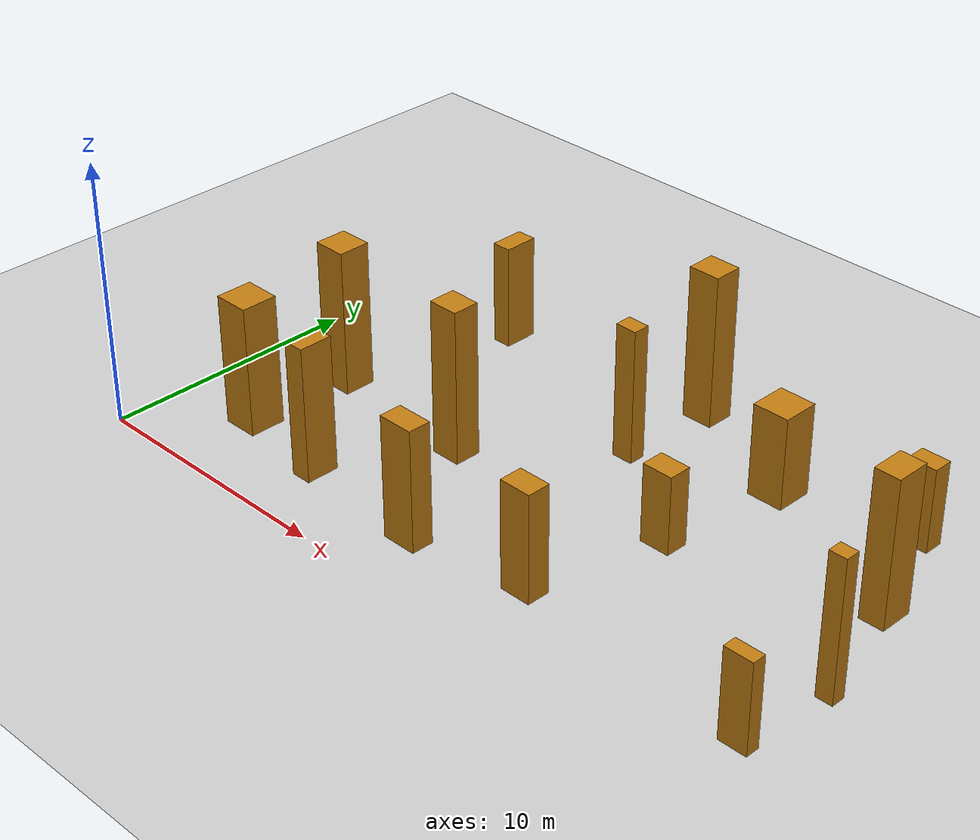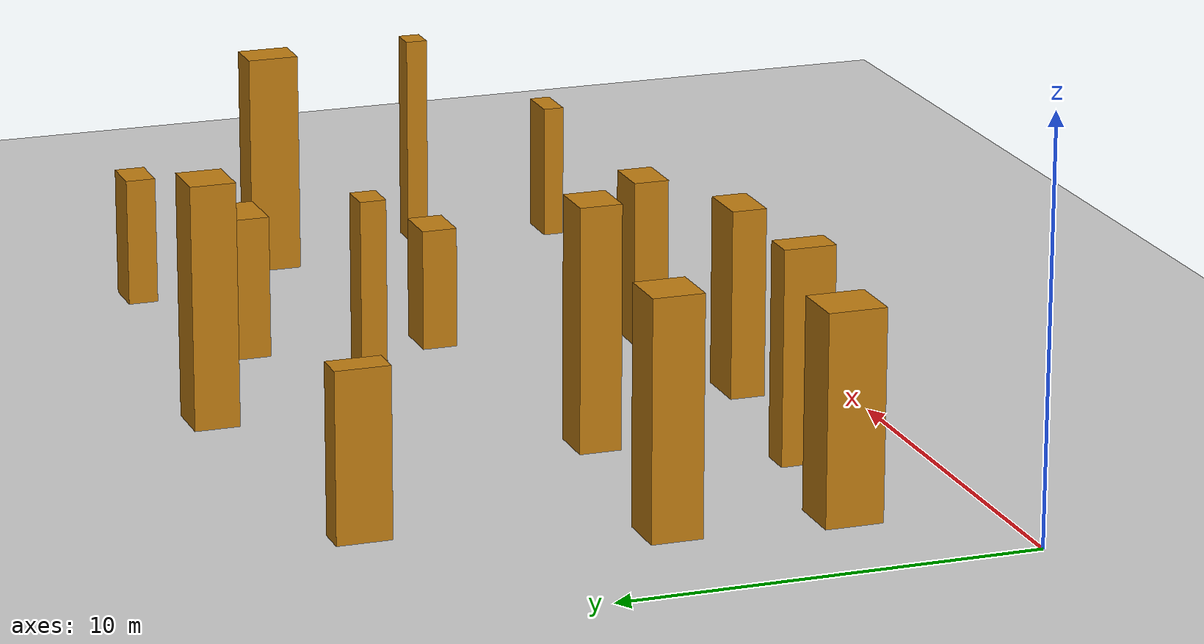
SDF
<sdf version="1.7">
 <world name="default">
  <model name="ground_plane">
   <static>1</static>
   <link name="link">
    <collision name="collision">
     <geometry><plane><normal>0 0 1</normal><size>100 100</size></plane></geometry>
     <surface>
      <contact><collide_bitmask>65535</collide_bitmask></contact>
      <friction><ode><mu>100</mu><mu2>50</mu2></ode></friction>
     </surface>
    </collision>
    <visual name="visual">
     <cast_shadows>0</cast_shadows>
     <geometry><plane><normal>0 0 1</normal><size>100 100</size></plane></geometry>
     <material>
      <script><uri>file://media/materials/scripts/gazebo.material</uri><name>Gazebo/Grey</name></script>
     </material>
    </visual>
   </link>
  </model>
  <model name="model0">
   <link name="link">
    <inertial>
     <mass>1</mass>
     <inertia>
      <ixx>0.166667</ixx>
      <ixy>0</ixy>
      <ixz>0</ixz>
      <iyy>0.166667</iyy>
      <iyz>0</iyz>
      <izz>0.166667</izz>
     </inertia>
    </inertial>
    <visual name="visual">
     <geometry><box><size>0.6597966464865729 0.5433565334158762 5.326100559477567</size></box></geometry>
     <material>
      <script><name>Gazebo/Grey</name><uri>file://media/materials/scripts/gazebo.material</uri></script>
      <shader type="pixel"><normal_map>__default__</normal_map></shader>
      <ambient>0.757 0.49 0.067 1</ambient>
      <diffuse>0.7 0.7 0.7 1</diffuse>
      <specular>0.01 0.01 0.01 1</specular>
      <emissive>0 0 0 1</emissive>
     </material>
    </visual>
    <collision name="collision">
     <geometry><box><size>0.6597966464865729 0.5433565334158762 5.326100559477567</size></box></geometry>
     <surface>
      <friction>
       <ode><mu>1</mu><mu2>1</mu2><fdir1>0 0 0</fdir1><slip1>0</slip1><slip2>0</slip2></ode>
       <torsional>
        <coefficient>1</coefficient>
        <patch_radius>0</patch_radius>
        <surface_radius>0</surface_radius>
        <use_patch_radius>1</use_patch_radius>
        <ode><slip>0</slip></ode>
       </torsional>
      </friction>
      <bounce><restitution_coefficient>0</restitution_coefficient><threshold>1e+06</threshold></bounce>
      <contact>
       <collide_without_contact>0</collide_without_contact>
       <collide_without_contact_bitmask>1</collide_without_contact_bitmask>
       <collide_bitmask>1</collide_bitmask>
       <ode>
        <soft_cfm>0</soft_cfm>
        <soft_erp>0.2</soft_erp>
        <kp>1e+13</kp>
        <kd>1</kd>
        <max_vel>0.01</max_vel>
        <min_depth>0</min_depth>
       </ode>
       <bullet>
        <split_impulse>1</split_impulse>
        <split_impulse_penetration_threshold>-0.01</split_impulse_penetration_threshold>
        <soft_cfm>0</soft_cfm>
        <soft_erp>0.2</soft_erp>
        <kp>1e+13</kp>
        <kd>1</kd>
       </bullet>
      </contact>
     </surface>
    </collision>
   </link>
   <static>0</static>
   <pose>26.97412062747795 5.797697109522776 2.6630502797387834 0.0 0.0 0.0</pose>
  </model>
  <model name="model4">
   <link name="link">
    <inertial>
     <mass>1</mass>
     <inertia>
      <ixx>0.166667</ixx>
      <ixy>0</ixy>
      <ixz>0</ixz>
      <iyy>0.166667</iyy>
      <iyz>0</iyz>
      <izz>0.166667</izz>
     </inertia>
    </inertial>
    <visual name="visual">
     <geometry><box><size>0.8350673018529385 0.6346498263390593 5.191413497331203</size></box></geometry>
     <material>
      <script><name>Gazebo/Grey</name><uri>file://media/materials/scripts/gazebo.material</uri></script>
      <shader type="pixel"><normal_map>__default__</normal_map></shader>
      <ambient>0.757 0.49 0.067 1</ambient>
      <diffuse>0.7 0.7 0.7 1</diffuse>
      <specular>0.01 0.01 0.01 1</specular>
      <emissive>0 0 0 1</emissive>
     </material>
    </visual>
    <collision name="collision">
     <geometry><box><size>0.8350673018529385 0.6346498263390593 5.191413497331203</size></box></geometry>
     <surface>
      <friction>
       <ode><mu>1</mu><mu2>1</mu2><fdir1>0 0 0</fdir1><slip1>0</slip1><slip2>0</slip2></ode>
       <torsional>
        <coefficient>1</coefficient>
        <patch_radius>0</patch_radius>
        <surface_radius>0</surface_radius>
        <use_patch_radius>1</use_patch_radius>
        <ode><slip>0</slip></ode>
       </torsional>
      </friction>
      <bounce><restitution_coefficient>0</restitution_coefficient><threshold>1e+06</threshold></bounce>
      <contact>
       <collide_without_contact>0</collide_without_contact>
       <collide_without_contact_bitmask>1</collide_without_contact_bitmask>
       <collide_bitmask>1</collide_bitmask>
       <ode>
        <soft_cfm>0</soft_cfm>
        <soft_erp>0.2</soft_erp>
        <kp>1e+13</kp>
        <kd>1</kd>
        <max_vel>0.01</max_vel>
        <min_depth>0</min_depth>
       </ode>
       <bullet>
        <split_impulse>1</split_impulse>
        <split_impulse_penetration_threshold>-0.01</split_impulse_penetration_threshold>
        <soft_cfm>0</soft_cfm>
        <soft_erp>0.2</soft_erp>
        <kp>1e+13</kp>
        <kd>1</kd>
       </bullet>
      </contact>
     </surface>
    </collision>
   </link>
   <static>0</static>
   <pose>14.127437549624553 11.041690797355706 2.5957067486656014 0.0 0.0 0.0</pose>
  </model>
  <model name="model5">
   <link name="link">
    <inertial>
     <mass>1</mass>
     <inertia>
      <ixx>0.166667</ixx>
      <ixy>0</ixy>
      <ixz>0</ixz>
      <iyy>0.166667</iyy>
      <iyz>0</iyz>
      <izz>0.166667</izz>
     </inertia>
    </inertial>
    <visual name="visual">
     <geometry><box><size>1.420351690742608 1.4059996348466806 3.5472753856791237</size></box></geometry>
     <material>
      <script><name>Gazebo/Grey</name><uri>file://media/materials/scripts/gazebo.material</uri></script>
      <shader type="pixel"><normal_map>__default__</normal_map></shader>
      <ambient>0.757 0.49 0.067 1</ambient>
      <diffuse>0.7 0.7 0.7 1</diffuse>
      <specular>0.01 0.01 0.01 1</specular>
      <emissive>0 0 0 1</emissive>
     </material>
    </visual>
    <collision name="collision">
     <geometry><box><size>1.420351690742608 1.4059996348466806 3.5472753856791237</size></box></geometry>
     <surface>
      <friction>
       <ode><mu>1</mu><mu2>1</mu2><fdir1>0 0 0</fdir1><slip1>0</slip1><slip2>0</slip2></ode>
       <torsional>
        <coefficient>1</coefficient>
        <patch_radius>0</patch_radius>
        <surface_radius>0</surface_radius>
        <use_patch_radius>1</use_patch_radius>
        <ode><slip>0</slip></ode>
       </torsional>
      </friction>
      <bounce><restitution_coefficient>0</restitution_coefficient><threshold>1e+06</threshold></bounce>
      <contact>
       <collide_without_contact>0</collide_without_contact>
       <collide_without_contact_bitmask>1</collide_without_contact_bitmask>
       <collide_bitmask>1</collide_bitmask>
       <ode>
        <soft_cfm>0</soft_cfm>
        <soft_erp>0.2</soft_erp>
        <kp>1e+13</kp>
        <kd>1</kd>
        <max_vel>0.01</max_vel>
        <min_depth>0</min_depth>
       </ode>
       <bullet>
        <split_impulse>1</split_impulse>
        <split_impulse_penetration_threshold>-0.01</split_impulse_penetration_threshold>
        <soft_cfm>0</soft_cfm>
        <soft_erp>0.2</soft_erp>
        <kp>1e+13</kp>
        <kd>1</kd>
       </bullet>
      </contact>
     </surface>
    </collision>
   </link>
   <static>0</static>
   <pose>19.210867779731654 12.896892039692435 1.7736376928395619 0.0 0.0 0.0</pose>
  </model>
  <model name="model7">
   <link name="link">
    <inertial>
     <mass>1</mass>
     <inertia>
      <ixx>0.166667</ixx>
      <ixy>0</ixy>
      <ixz>0</ixz>
      <iyy>0.166667</iyy>
      <iyz>0</iyz>
      <izz>0.166667</izz>
     </inertia>
    </inertial>
    <visual name="visual">
     <geometry><box><size>1.3609990061537673 0.8579866355465122 4.659966668525682</size></box></geometry>
     <material>
      <script><name>Gazebo/Grey</name><uri>file://media/materials/scripts/gazebo.material</uri></script>
      <shader type="pixel"><normal_map>__default__</normal_map></shader>
      <ambient>0.757 0.49 0.067 1</ambient>
      <diffuse>0.7 0.7 0.7 1</diffuse>
      <specular>0.01 0.01 0.01 1</specular>
      <emissive>0 0 0 1</emissive>
     </material>
    </visual>
    <collision name="collision">
     <geometry><box><size>1.3609990061537673 0.8579866355465122 4.659966668525682</size></box></geometry>
     <surface>
      <friction>
       <ode><mu>1</mu><mu2>1</mu2><fdir1>0 0 0</fdir1><slip1>0</slip1><slip2>0</slip2></ode>
       <torsional>
        <coefficient>1</coefficient>
        <patch_radius>0</patch_radius>
        <surface_radius>0</surface_radius>
        <use_patch_radius>1</use_patch_radius>
        <ode><slip>0</slip></ode>
       </torsional>
      </friction>
      <bounce><restitution_coefficient>0</restitution_coefficient><threshold>1e+06</threshold></bounce>
      <contact>
       <collide_without_contact>0</collide_without_contact>
       <collide_without_contact_bitmask>1</collide_without_contact_bitmask>
       <collide_bitmask>1</collide_bitmask>
       <ode>
        <soft_cfm>0</soft_cfm>
        <soft_erp>0.2</soft_erp>
        <kp>1e+13</kp>
        <kd>1</kd>
        <max_vel>0.01</max_vel>
        <min_depth>0</min_depth>
       </ode>
       <bullet>
        <split_impulse>1</split_impulse>
        <split_impulse_penetration_threshold>-0.01</split_impulse_penetration_threshold>
        <soft_cfm>0</soft_cfm>
        <soft_erp>0.2</soft_erp>
        <kp>1e+13</kp>
        <kd>1</kd>
       </bullet>
      </contact>
     </surface>
    </collision>
   </link>
   <static>0</static>
   <pose>12.444823412982197 2.362173613408313 2.329983334262841 0.0 0.0 0.0</pose>
  </model>
  <model name="model11">
   <link name="link">
    <inertial>
     <mass>1</mass>
     <inertia>
      <ixx>0.166667</ixx>
      <ixy>0</ixy>
      <ixz>0</ixz>
      <iyy>0.166667</iyy>
      <iyz>0</iyz>
      <izz>0.166667</izz>
     </inertia>
    </inertial>
    <visual name="visual">
     <geometry><box><size>0.7419718425151329 1.311030205805578 4.057804555854417</size></box></geometry>
     <material>
      <script><name>Gazebo/Grey</name><uri>file://media/materials/scripts/gazebo.material</uri></script>
      <shader type="pixel"><normal_map>__default__</normal_map></shader>
      <ambient>0.757 0.49 0.067 1</ambient>
      <diffuse>0.7 0.7 0.7 1</diffuse>
      <specular>0.01 0.01 0.01 1</specular>
      <emissive>0 0 0 1</emissive>
     </material>
    </visual>
    <collision name="collision">
     <geometry><box><size>0.7419718425151329 1.311030205805578 4.057804555854417</size></box></geometry>
     <surface>
      <friction>
       <ode><mu>1</mu><mu2>1</mu2><fdir1>0 0 0</fdir1><slip1>0</slip1><slip2>0</slip2></ode>
       <torsional>
        <coefficient>1</coefficient>
        <patch_radius>0</patch_radius>
        <surface_radius>0</surface_radius>
        <use_patch_radius>1</use_patch_radius>
        <ode><slip>0</slip></ode>
       </torsional>
      </friction>
      <bounce><restitution_coefficient>0</restitution_coefficient><threshold>1e+06</threshold></bounce>
      <contact>
       <collide_without_contact>0</collide_without_contact>
       <collide_without_contact_bitmask>1</collide_without_contact_bitmask>
       <collide_bitmask>1</collide_bitmask>
       <ode>
        <soft_cfm>0</soft_cfm>
        <soft_erp>0.2</soft_erp>
        <kp>1e+13</kp>
        <kd>1</kd>
        <max_vel>0.01</max_vel>
        <min_depth>0</min_depth>
       </ode>
       <bullet>
        <split_impulse>1</split_impulse>
        <split_impulse_penetration_threshold>-0.01</split_impulse_penetration_threshold>
        <soft_cfm>0</soft_cfm>
        <soft_erp>0.2</soft_erp>
        <kp>1e+13</kp>
        <kd>1</kd>
       </bullet>
      </contact>
     </surface>
    </collision>
   </link>
   <static>0</static>
   <pose>5.656998009752081 13.93431440700892 2.0289022779272083 0.0 0.0 0.0</pose>
  </model>
  <model name="model13">
   <link name="link">
    <inertial>
     <mass>1</mass>
     <inertia>
      <ixx>0.166667</ixx>
      <ixy>0</ixy>
      <ixz>0</ixz>
      <iyy>0.166667</iyy>
      <iyz>0</iyz>
      <izz>0.166667</izz>
     </inertia>
    </inertial>
    <visual name="visual">
     <geometry><box><size>0.9709278101786866 1.283737654702767 5.597132644336313</size></box></geometry>
     <material>
      <script><name>Gazebo/Grey</name><uri>file://media/materials/scripts/gazebo.material</uri></script>
      <shader type="pixel"><normal_map>__default__</normal_map></shader>
      <ambient>0.757 0.49 0.067 1</ambient>
      <diffuse>0.7 0.7 0.7 1</diffuse>
      <specular>0.01 0.01 0.01 1</specular>
      <emissive>0 0 0 1</emissive>
     </material>
    </visual>
    <collision name="collision">
     <geometry><box><size>0.9709278101786866 1.283737654702767 5.597132644336313</size></box></geometry>
     <surface>
      <friction>
       <ode><mu>1</mu><mu2>1</mu2><fdir1>0 0 0</fdir1><slip1>0</slip1><slip2>0</slip2></ode>
       <torsional>
        <coefficient>1</coefficient>
        <patch_radius>0</patch_radius>
        <surface_radius>0</surface_radius>
        <use_patch_radius>1</use_patch_radius>
        <ode><slip>0</slip></ode>
       </torsional>
      </friction>
      <bounce><restitution_coefficient>0</restitution_coefficient><threshold>1e+06</threshold></bounce>
      <contact>
       <collide_without_contact>0</collide_without_contact>
       <collide_without_contact_bitmask>1</collide_without_contact_bitmask>
       <collide_bitmask>1</collide_bitmask>
       <ode>
        <soft_cfm>0</soft_cfm>
        <soft_erp>0.2</soft_erp>
        <kp>1e+13</kp>
        <kd>1</kd>
        <max_vel>0.01</max_vel>
        <min_depth>0</min_depth>
       </ode>
       <bullet>
        <split_impulse>1</split_impulse>
        <split_impulse_penetration_threshold>-0.01</split_impulse_penetration_threshold>
        <soft_cfm>0</soft_cfm>
        <soft_erp>0.2</soft_erp>
        <kp>1e+13</kp>
        <kd>1</kd>
       </bullet>
      </contact>
     </surface>
    </collision>
   </link>
   <static>0</static>
   <pose>25.737608231872454 10.061197598316717 2.7985663221681567 0.0 0.0 0.0</pose>
  </model>
  <model name="model14">
   <link name="link">
    <inertial>
     <mass>1</mass>
     <inertia>
      <ixx>0.166667</ixx>
      <ixy>0</ixy>
      <ixz>0</ixz>
      <iyy>0.166667</iyy>
      <iyz>0</iyz>
      <izz>0.166667</izz>
     </inertia>
    </inertial>
    <visual name="visual">
     <geometry><box><size>1.085612645199187 0.7459505998726893 3.2203096250966006</size></box></geometry>
     <material>
      <script><name>Gazebo/Grey</name><uri>file://media/materials/scripts/gazebo.material</uri></script>
      <shader type="pixel"><normal_map>__default__</normal_map></shader>
      <ambient>0.757 0.49 0.067 1</ambient>
      <diffuse>0.7 0.7 0.7 1</diffuse>
      <specular>0.01 0.01 0.01 1</specular>
      <emissive>0 0 0 1</emissive>
     </material>
    </visual>
    <collision name="collision">
     <geometry><box><size>1.085612645199187 0.7459505998726893 3.2203096250966006</size></box></geometry>
     <surface>
      <friction>
       <ode><mu>1</mu><mu2>1</mu2><fdir1>0 0 0</fdir1><slip1>0</slip1><slip2>0</slip2></ode>
       <torsional>
        <coefficient>1</coefficient>
        <patch_radius>0</patch_radius>
        <surface_radius>0</surface_radius>
        <use_patch_radius>1</use_patch_radius>
        <ode><slip>0</slip></ode>
       </torsional>
      </friction>
      <bounce><restitution_coefficient>0</restitution_coefficient><threshold>1e+06</threshold></bounce>
      <contact>
       <collide_without_contact>0</collide_without_contact>
       <collide_without_contact_bitmask>1</collide_without_contact_bitmask>
       <collide_bitmask>1</collide_bitmask>
       <ode>
        <soft_cfm>0</soft_cfm>
        <soft_erp>0.2</soft_erp>
        <kp>1e+13</kp>
        <kd>1</kd>
        <max_vel>0.01</max_vel>
        <min_depth>0</min_depth>
       </ode>
       <bullet>
        <split_impulse>1</split_impulse>
        <split_impulse_penetration_threshold>-0.01</split_impulse_penetration_threshold>
        <soft_cfm>0</soft_cfm>
        <soft_erp>0.2</soft_erp>
        <kp>1e+13</kp>
        <kd>1</kd>
       </bullet>
      </contact>
     </surface>
    </collision>
   </link>
   <static>0</static>
   <pose>24.208528531126774 14.016378220542073 1.6101548125483003 0.0 0.0 0.0</pose>
  </model>
  <model name="model17">
   <link name="link">
    <inertial>
     <mass>1</mass>
     <inertia>
      <ixx>0.166667</ixx>
      <ixy>0</ixy>
      <ixz>0</ixz>
      <iyy>0.166667</iyy>
      <iyz>0</iyz>
      <izz>0.166667</izz>
     </inertia>
    </inertial>
    <visual name="visual">
     <geometry><box><size>1.2372976752447358 1.1043510471709674 5.954559431864228</size></box></geometry>
     <material>
      <script><name>Gazebo/Grey</name><uri>file://media/materials/scripts/gazebo.material</uri></script>
      <shader type="pixel"><normal_map>__default__</normal_map></shader>
      <ambient>0.757 0.49 0.067 1</ambient>
      <diffuse>0.7 0.7 0.7 1</diffuse>
      <specular>0.01 0.01 0.01 1</specular>
      <emissive>0 0 0 1</emissive>
     </material>
    </visual>
    <collision name="collision">
     <geometry><box><size>1.2372976752447358 1.1043510471709674 5.954559431864228</size></box></geometry>
     <surface>
      <friction>
       <ode><mu>1</mu><mu2>1</mu2><fdir1>0 0 0</fdir1><slip1>0</slip1><slip2>0</slip2></ode>
       <torsional>
        <coefficient>1</coefficient>
        <patch_radius>0</patch_radius>
        <surface_radius>0</surface_radius>
        <use_patch_radius>1</use_patch_radius>
        <ode><slip>0</slip></ode>
       </torsional>
      </friction>
      <bounce><restitution_coefficient>0</restitution_coefficient><threshold>1e+06</threshold></bounce>
      <contact>
       <collide_without_contact>0</collide_without_contact>
       <collide_without_contact_bitmask>1</collide_without_contact_bitmask>
       <collide_bitmask>1</collide_bitmask>
       <ode>
        <soft_cfm>0</soft_cfm>
        <soft_erp>0.2</soft_erp>
        <kp>1e+13</kp>
        <kd>1</kd>
        <max_vel>0.01</max_vel>
        <min_depth>0</min_depth>
       </ode>
       <bullet>
        <split_impulse>1</split_impulse>
        <split_impulse_penetration_threshold>-0.01</split_impulse_penetration_threshold>
        <soft_cfm>0</soft_cfm>
        <soft_erp>0.2</soft_erp>
        <kp>1e+13</kp>
        <kd>1</kd>
       </bullet>
      </contact>
     </surface>
    </collision>
   </link>
   <static>0</static>
   <pose>14.343097859734003 14.900116286924177 2.977279715932114 0.0 0.0 0.0</pose>
  </model>
  <model name="model18">
   <link name="link">
    <inertial>
     <mass>1</mass>
     <inertia>
      <ixx>0.166667</ixx>
      <ixy>0</ixy>
      <ixz>0</ixz>
      <iyy>0.166667</iyy>
      <iyz>0</iyz>
      <izz>0.166667</izz>
     </inertia>
    </inertial>
    <visual name="visual">
     <geometry><box><size>1.3828707941109726 1.3906438336923028 5.04115987898532</size></box></geometry>
     <material>
      <script><name>Gazebo/Grey</name><uri>file://media/materials/scripts/gazebo.material</uri></script>
      <shader type="pixel"><normal_map>__default__</normal_map></shader>
      <ambient>0.757 0.49 0.067 1</ambient>
      <diffuse>0.7 0.7 0.7 1</diffuse>
      <specular>0.01 0.01 0.01 1</specular>
      <emissive>0 0 0 1</emissive>
     </material>
    </visual>
    <collision name="collision">
     <geometry><box><size>1.3828707941109726 1.3906438336923028 5.04115987898532</size></box></geometry>
     <surface>
      <friction>
       <ode><mu>1</mu><mu2>1</mu2><fdir1>0 0 0</fdir1><slip1>0</slip1><slip2>0</slip2></ode>
       <torsional>
        <coefficient>1</coefficient>
        <patch_radius>0</patch_radius>
        <surface_radius>0</surface_radius>
        <use_patch_radius>1</use_patch_radius>
        <ode><slip>0</slip></ode>
       </torsional>
      </friction>
      <bounce><restitution_coefficient>0</restitution_coefficient><threshold>1e+06</threshold></bounce>
      <contact>
       <collide_without_contact>0</collide_without_contact>
       <collide_without_contact_bitmask>1</collide_without_contact_bitmask>
       <collide_bitmask>1</collide_bitmask>
       <ode>
        <soft_cfm>0</soft_cfm>
        <soft_erp>0.2</soft_erp>
        <kp>1e+13</kp>
        <kd>1</kd>
        <max_vel>0.01</max_vel>
        <min_depth>0</min_depth>
       </ode>
       <bullet>
        <split_impulse>1</split_impulse>
        <split_impulse_penetration_threshold>-0.01</split_impulse_penetration_threshold>
        <soft_cfm>0</soft_cfm>
        <soft_erp>0.2</soft_erp>
        <kp>1e+13</kp>
        <kd>1</kd>
       </bullet>
      </contact>
     </surface>
    </collision>
   </link>
   <static>0</static>
   <pose>3.4003001169681104 3.3471065609501025 2.52057993949266 0.0 0.0 0.0</pose>
  </model>
  <model name="model19">
   <link name="link">
    <inertial>
     <mass>1</mass>
     <inertia>
      <ixx>0.166667</ixx>
      <ixy>0</ixy>
      <ixz>0</ixz>
      <iyy>0.166667</iyy>
      <iyz>0</iyz>
      <izz>0.166667</izz>
     </inertia>
    </inertial>
    <visual name="visual">
     <geometry><box><size>1.1766397357138518 1.0221147197745313 5.939055844770522</size></box></geometry>
     <material>
      <script><name>Gazebo/Grey</name><uri>file://media/materials/scripts/gazebo.material</uri></script>
      <shader type="pixel"><normal_map>__default__</normal_map></shader>
      <ambient>0.757 0.49 0.067 1</ambient>
      <diffuse>0.7 0.7 0.7 1</diffuse>
      <specular>0.01 0.01 0.01 1</specular>
      <emissive>0 0 0 1</emissive>
     </material>
    </visual>
    <collision name="collision">
     <geometry><box><size>1.1766397357138518 1.0221147197745313 5.939055844770522</size></box></geometry>
     <surface>
      <friction>
       <ode><mu>1</mu><mu2>1</mu2><fdir1>0 0 0</fdir1><slip1>0</slip1><slip2>0</slip2></ode>
       <torsional>
        <coefficient>1</coefficient>
        <patch_radius>0</patch_radius>
        <surface_radius>0</surface_radius>
        <use_patch_radius>1</use_patch_radius>
        <ode><slip>0</slip></ode>
       </torsional>
      </friction>
      <bounce><restitution_coefficient>0</restitution_coefficient><threshold>1e+06</threshold></bounce>
      <contact>
       <collide_without_contact>0</collide_without_contact>
       <collide_without_contact_bitmask>1</collide_without_contact_bitmask>
       <collide_bitmask>1</collide_bitmask>
       <ode>
        <soft_cfm>0</soft_cfm>
        <soft_erp>0.2</soft_erp>
        <kp>1e+13</kp>
        <kd>1</kd>
        <max_vel>0.01</max_vel>
        <min_depth>0</min_depth>
       </ode>
       <bullet>
        <split_impulse>1</split_impulse>
        <split_impulse_penetration_threshold>-0.01</split_impulse_penetration_threshold>
        <soft_cfm>0</soft_cfm>
        <soft_erp>0.2</soft_erp>
        <kp>1e+13</kp>
        <kd>1</kd>
       </bullet>
      </contact>
     </surface>
    </collision>
   </link>
   <static>0</static>
   <pose>9.814896854985683 6.994821349864132 2.969527922385261 0.0 0.0 0.0</pose>
  </model>
  <model name="model21">
   <link name="link">
    <inertial>
     <mass>1</mass>
     <inertia>
      <ixx>0.166667</ixx>
      <ixy>0</ixy>
      <ixz>0</ixz>
      <iyy>0.166667</iyy>
      <iyz>0</iyz>
      <izz>0.166667</izz>
     </inertia>
    </inertial>
    <visual name="visual">
     <geometry><box><size>1.2343157561553244 0.8814392124317341 4.132463312197858</size></box></geometry>
     <material>
      <script><name>Gazebo/Grey</name><uri>file://media/materials/scripts/gazebo.material</uri></script>
      <shader type="pixel"><normal_map>__default__</normal_map></shader>
      <ambient>0.757 0.49 0.067 1</ambient>
      <diffuse>0.7 0.7 0.7 1</diffuse>
      <specular>0.01 0.01 0.01 1</specular>
      <emissive>0 0 0 1</emissive>
     </material>
    </visual>
    <collision name="collision">
     <geometry><box><size>1.2343157561553244 0.8814392124317341 4.132463312197858</size></box></geometry>
     <surface>
      <friction>
       <ode><mu>1</mu><mu2>1</mu2><fdir1>0 0 0</fdir1><slip1>0</slip1><slip2>0</slip2></ode>
       <torsional>
        <coefficient>1</coefficient>
        <patch_radius>0</patch_radius>
        <surface_radius>0</surface_radius>
        <use_patch_radius>1</use_patch_radius>
        <ode><slip>0</slip></ode>
       </torsional>
      </friction>
      <bounce><restitution_coefficient>0</restitution_coefficient><threshold>1e+06</threshold></bounce>
      <contact>
       <collide_without_contact>0</collide_without_contact>
       <collide_without_contact_bitmask>1</collide_without_contact_bitmask>
       <collide_bitmask>1</collide_bitmask>
       <ode>
        <soft_cfm>0</soft_cfm>
        <soft_erp>0.2</soft_erp>
        <kp>1e+13</kp>
        <kd>1</kd>
        <max_vel>0.01</max_vel>
        <min_depth>0</min_depth>
       </ode>
       <bullet>
        <split_impulse>1</split_impulse>
        <split_impulse_penetration_threshold>-0.01</split_impulse_penetration_threshold>
        <soft_cfm>0</soft_cfm>
        <soft_erp>0.2</soft_erp>
        <kp>1e+13</kp>
        <kd>1</kd>
       </bullet>
      </contact>
     </surface>
    </collision>
   </link>
   <static>0</static>
   <pose>17.01940823120003 3.0998229616095294 2.066231656098929 0.0 0.0 0.0</pose>
  </model>
  <model name="model22">
   <link name="link">
    <inertial>
     <mass>1</mass>
     <inertia>
      <ixx>0.166667</ixx>
      <ixy>0</ixy>
      <ixz>0</ixz>
      <iyy>0.166667</iyy>
      <iyz>0</iyz>
      <izz>0.166667</izz>
     </inertia>
    </inertial>
    <visual name="visual">
     <geometry><box><size>1.1004681920784893 0.5238266110276231 3.413924414794596</size></box></geometry>
     <material>
      <script><name>Gazebo/Grey</name><uri>file://media/materials/scripts/gazebo.material</uri></script>
      <shader type="pixel"><normal_map>__default__</normal_map></shader>
      <ambient>0.757 0.49 0.067 1</ambient>
      <diffuse>0.7 0.7 0.7 1</diffuse>
      <specular>0.01 0.01 0.01 1</specular>
      <emissive>0 0 0 1</emissive>
     </material>
    </visual>
    <collision name="collision">
     <geometry><box><size>1.1004681920784893 0.5238266110276231 3.413924414794596</size></box></geometry>
     <surface>
      <friction>
       <ode><mu>1</mu><mu2>1</mu2><fdir1>0 0 0</fdir1><slip1>0</slip1><slip2>0</slip2></ode>
       <torsional>
        <coefficient>1</coefficient>
        <patch_radius>0</patch_radius>
        <surface_radius>0</surface_radius>
        <use_patch_radius>1</use_patch_radius>
        <ode><slip>0</slip></ode>
       </torsional>
      </friction>
      <bounce><restitution_coefficient>0</restitution_coefficient><threshold>1e+06</threshold></bounce>
      <contact>
       <collide_without_contact>0</collide_without_contact>
       <collide_without_contact_bitmask>1</collide_without_contact_bitmask>
       <collide_bitmask>1</collide_bitmask>
       <ode>
        <soft_cfm>0</soft_cfm>
        <soft_erp>0.2</soft_erp>
        <kp>1e+13</kp>
        <kd>1</kd>
        <max_vel>0.01</max_vel>
        <min_depth>0</min_depth>
       </ode>
       <bullet>
        <split_impulse>1</split_impulse>
        <split_impulse_penetration_threshold>-0.01</split_impulse_penetration_threshold>
        <soft_cfm>0</soft_cfm>
        <soft_erp>0.2</soft_erp>
        <kp>1e+13</kp>
        <kd>1</kd>
       </bullet>
      </contact>
     </surface>
    </collision>
   </link>
   <static>0</static>
   <pose>26.40422010752052 2.3164301648803622 1.706962207397298 0.0 0.0 0.0</pose>
  </model>
  <model name="model25">
   <link name="link">
    <inertial>
     <mass>1</mass>
     <inertia>
      <ixx>0.166667</ixx>
      <ixy>0</ixy>
      <ixz>0</ixz>
      <iyy>0.166667</iyy>
      <iyz>0</iyz>
      <izz>0.166667</izz>
     </inertia>
    </inertial>
    <visual name="visual">
     <geometry><box><size>0.8039563009276739 1.2723089950896367 5.2145879631435665</size></box></geometry>
     <material>
      <script><name>Gazebo/Grey</name><uri>file://media/materials/scripts/gazebo.material</uri></script>
      <shader type="pixel"><normal_map>__default__</normal_map></shader>
      <ambient>0.757 0.49 0.067 1</ambient>
      <diffuse>0.7 0.7 0.7 1</diffuse>
      <specular>0.01 0.01 0.01 1</specular>
      <emissive>0 0 0 1</emissive>
     </material>
    </visual>
    <collision name="collision">
     <geometry><box><size>0.8039563009276739 1.2723089950896367 5.2145879631435665</size></box></geometry>
     <surface>
      <friction>
       <ode><mu>1</mu><mu2>1</mu2><fdir1>0 0 0</fdir1><slip1>0</slip1><slip2>0</slip2></ode>
       <torsional>
        <coefficient>1</coefficient>
        <patch_radius>0</patch_radius>
        <surface_radius>0</surface_radius>
        <use_patch_radius>1</use_patch_radius>
        <ode><slip>0</slip></ode>
       </torsional>
      </friction>
      <bounce><restitution_coefficient>0</restitution_coefficient><threshold>1e+06</threshold></bounce>
      <contact>
       <collide_without_contact>0</collide_without_contact>
       <collide_without_contact_bitmask>1</collide_without_contact_bitmask>
       <collide_bitmask>1</collide_bitmask>
       <ode>
        <soft_cfm>0</soft_cfm>
        <soft_erp>0.2</soft_erp>
        <kp>1e+13</kp>
        <kd>1</kd>
        <max_vel>0.01</max_vel>
        <min_depth>0</min_depth>
       </ode>
       <bullet>
        <split_impulse>1</split_impulse>
        <split_impulse_penetration_threshold>-0.01</split_impulse_penetration_threshold>
        <soft_cfm>0</soft_cfm>
        <soft_erp>0.2</soft_erp>
        <kp>1e+13</kp>
        <kd>1</kd>
       </bullet>
      </contact>
     </surface>
    </collision>
   </link>
   <static>0</static>
   <pose>7.275548782068657 2.800100924015066 2.6072939815717833 0.0 0.0 0.0</pose>
  </model>
  <model name="model27">
   <link name="link">
    <inertial>
     <mass>1</mass>
     <inertia>
      <ixx>0.166667</ixx>
      <ixy>0</ixy>
      <ixz>0</ixz>
      <iyy>0.166667</iyy>
      <iyz>0</iyz>
      <izz>0.166667</izz>
     </inertia>
    </inertial>
    <visual name="visual">
     <geometry><box><size>1.2705804271511814 1.2253145956345137 5.690439418701009</size></box></geometry>
     <material>
      <script><name>Gazebo/Grey</name><uri>file://media/materials/scripts/gazebo.material</uri></script>
      <shader type="pixel"><normal_map>__default__</normal_map></shader>
      <ambient>0.757 0.49 0.067 1</ambient>
      <diffuse>0.7 0.7 0.7 1</diffuse>
      <specular>0.01 0.01 0.01 1</specular>
      <emissive>0 0 0 1</emissive>
     </material>
    </visual>
    <collision name="collision">
     <geometry><box><size>1.2705804271511814 1.2253145956345137 5.690439418701009</size></box></geometry>
     <surface>
      <friction>
       <ode><mu>1</mu><mu2>1</mu2><fdir1>0 0 0</fdir1><slip1>0</slip1><slip2>0</slip2></ode>
       <torsional>
        <coefficient>1</coefficient>
        <patch_radius>0</patch_radius>
        <surface_radius>0</surface_radius>
        <use_patch_radius>1</use_patch_radius>
        <ode><slip>0</slip></ode>
       </torsional>
      </friction>
      <bounce><restitution_coefficient>0</restitution_coefficient><threshold>1e+06</threshold></bounce>
      <contact>
       <collide_without_contact>0</collide_without_contact>
       <collide_without_contact_bitmask>1</collide_without_contact_bitmask>
       <collide_bitmask>1</collide_bitmask>
       <ode>
        <soft_cfm>0</soft_cfm>
        <soft_erp>0.2</soft_erp>
        <kp>1e+13</kp>
        <kd>1</kd>
        <max_vel>0.01</max_vel>
        <min_depth>0</min_depth>
       </ode>
       <bullet>
        <split_impulse>1</split_impulse>
        <split_impulse_penetration_threshold>-0.01</split_impulse_penetration_threshold>
        <soft_cfm>0</soft_cfm>
        <soft_erp>0.2</soft_erp>
        <kp>1e+13</kp>
        <kd>1</kd>
       </bullet>
      </contact>
     </surface>
    </collision>
   </link>
   <static>0</static>
   <pose>3.7146223499461923 7.414418821541471 2.8452197093505043 0.0 0.0 0.0</pose>
  </model>
  <model name="model29">
   <link name="link">
    <inertial>
     <mass>1</mass>
     <inertia>
      <ixx>0.166667</ixx>
      <ixy>0</ixy>
      <ixz>0</ixz>
      <iyy>0.166667</iyy>
      <iyz>0</iyz>
      <izz>0.166667</izz>
     </inertia>
    </inertial>
    <visual name="visual">
     <geometry><box><size>1.192940706894106 0.8692266951843263 3.014245720965433</size></box></geometry>
     <material>
      <script><name>Gazebo/Grey</name><uri>file://media/materials/scripts/gazebo.material</uri></script>
      <shader type="pixel"><normal_map>__default__</normal_map></shader>
      <ambient>0.757 0.49 0.067 1</ambient>
      <diffuse>0.7 0.7 0.7 1</diffuse>
      <specular>0.01 0.01 0.01 1</specular>
      <emissive>0 0 0 1</emissive>
     </material>
    </visual>
    <collision name="collision">
     <geometry><box><size>1.192940706894106 0.8692266951843263 3.014245720965433</size></box></geometry>
     <surface>
      <friction>
       <ode><mu>1</mu><mu2>1</mu2><fdir1>0 0 0</fdir1><slip1>0</slip1><slip2>0</slip2></ode>
       <torsional>
        <coefficient>1</coefficient>
        <patch_radius>0</patch_radius>
        <surface_radius>0</surface_radius>
        <use_patch_radius>1</use_patch_radius>
        <ode><slip>0</slip></ode>
       </torsional>
      </friction>
      <bounce><restitution_coefficient>0</restitution_coefficient><threshold>1e+06</threshold></bounce>
      <contact>
       <collide_without_contact>0</collide_without_contact>
       <collide_without_contact_bitmask>1</collide_without_contact_bitmask>
       <collide_bitmask>1</collide_bitmask>
       <ode>
        <soft_cfm>0</soft_cfm>
        <soft_erp>0.2</soft_erp>
        <kp>1e+13</kp>
        <kd>1</kd>
        <max_vel>0.01</max_vel>
        <min_depth>0</min_depth>
       </ode>
       <bullet>
        <split_impulse>1</split_impulse>
        <split_impulse_penetration_threshold>-0.01</split_impulse_penetration_threshold>
        <soft_cfm>0</soft_cfm>
        <soft_erp>0.2</soft_erp>
        <kp>1e+13</kp>
        <kd>1</kd>
       </bullet>
      </contact>
     </surface>
    </collision>
   </link>
   <static>0</static>
   <pose>18.375984922685266 8.090376539241028 1.5071228604827165 0.0 0.0 0.0</pose>
  </model>
 </world>
</sdf>
